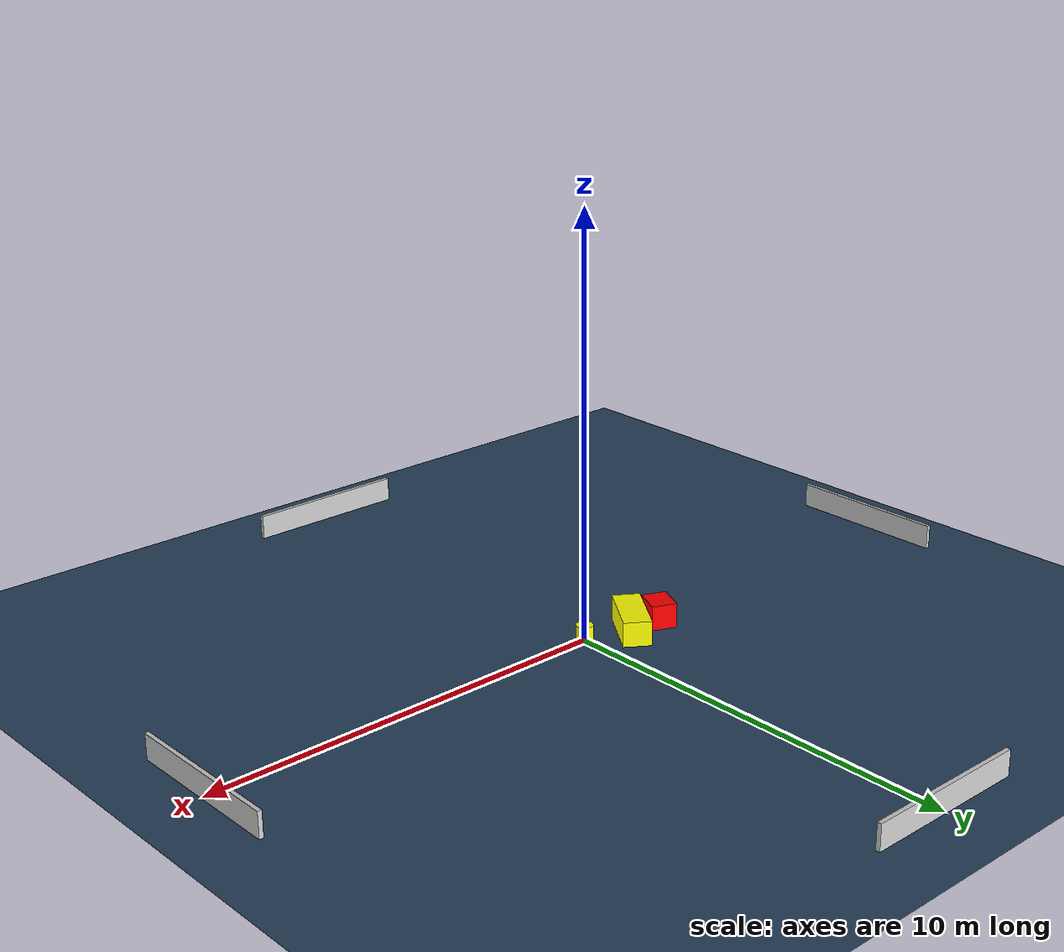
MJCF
<?xml version="1.0" ?>
<mujoco model="generated_environment">
  <option timestep="0.01" integrator="RK4" cone="elliptic"/>
  <default>
    <geom density="1"/>
  </default>
  <asset>
    <texture builtin="gradient" height="3072" name="skybox" rgb1="0.3 0.5 0.7" rgb2="0 0 0" type="skybox" width="512"/>
    <texture builtin="checker" height="300" name="groundplane" rgb1="0.2 0.3 0.4" rgb2="0.1 0.2 0.3" type="2d" width="300"/>
    <material name="groundplane" reflectance="0.2" texrepeat="5 5" texture="groundplane"/>
  </asset>
  <worldbody>
    <light dir="0 0 -1" directional="true" pos="0 0 1.5"/>
    <geom condim="3" friction="0.5 0.005 0.001" material="groundplane" name="floor" pos="0 0 0" size="0 0 0.05" type="plane"/>
    <body name="walls">
      <geom name="wall_1" condim="4" pos="-10.0 0.0 0.3" rgba="0.800000011920929 0.800000011920929 0.800000011920929 1.0" size="0.05 2.0 0.3" type="box"/>
      <geom name="wall_2" condim="4" pos="10.0 0.0 0.3" rgba="0.800000011920929 0.800000011920929 0.800000011920929 1.0" size="0.05 2.0 0.3" type="box"/>
      <geom name="wall_3" condim="4" pos="0.0 -10.0 0.3" rgba="0.800000011920929 0.800000011920929 0.800000011920929 1.0" size="2.0 0.05 0.3" type="box"/>
      <geom name="wall_4" condim="4" pos="0.0 10.0 0.3" rgba="0.800000011920929 0.800000011920929 0.800000011920929 1.0" size="2.0 0.05 0.3" type="box"/>
    </body>
    <body name="robot">
      <joint name="joint_x" type="slide" pos="0 0 0" axis="1 0 0"/>
      <joint name="joint_y" type="slide" pos="0 0 0" axis="0 1 0"/>
      <geom name="robot" type="cylinder" pos="0.0 0.0 0.2" size="0.2 0.2 0.0" mass="5.0" friction="1.0 0.005 0.0001" condim="4" rgba="1.0 1.0 0.0 1.0"/>
    </body>
    <body name="obstacle_1_movable">
      <geom name="obstacle_1_movable" condim="4" pos="-1.0938394117166277 0.3942857081894044 0.3" euler="0 0 236.12126635334286" friction="0.0 0.005 0.001" rgba="1.0 1.0 0.0 1.0" size="0.7598116820588909 0.33147208191939015 0.3" type="box" mass="0.1"/>
      <joint type="free"/>
    </body>
    <body name="obstacle_2_static">
      <geom name="obstacle_2_static" condim="4" pos="-1.8912205908821234 0.4762178113684757 0.3" euler="0 0 246.51116628899973" friction="0.0 0.005 0.001" rgba="1.0 0.0 0.0 1.0" size="0.3504622201747091 0.3018847472041703 0.3" type="box"/>
    </body>
  </worldbody>
  <actuator>
    <motor name="actuator_x" joint="joint_x" gear="1" ctrlrange="-1 1"/>
    <motor name="actuator_y" joint="joint_y" gear="1" ctrlrange="-1 1"/>
  </actuator>
</mujoco>
